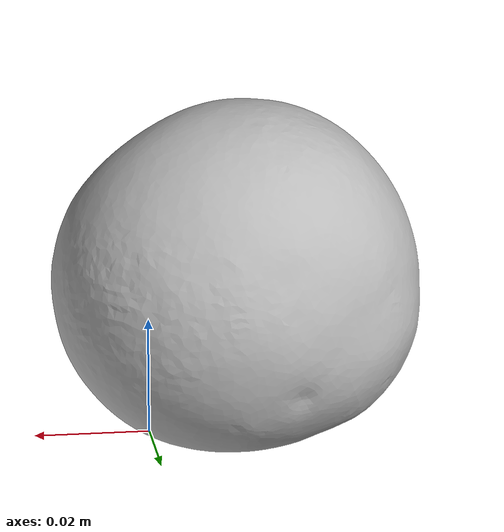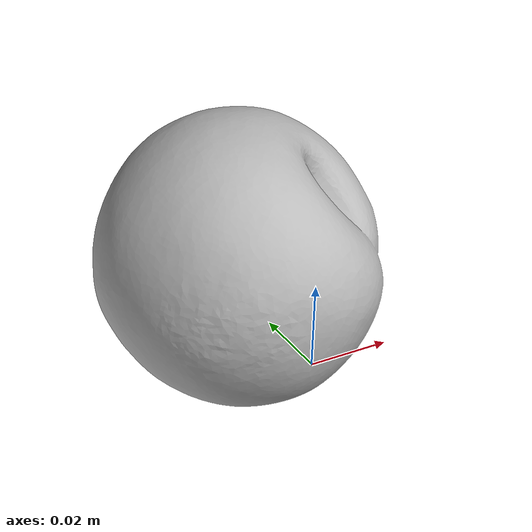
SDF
<?xml version='1.0'?>
<sdf version="1.4">
  <model name="peach">
    <static>false</static>
    <link name="link">
      <inertial>
        <pose>-0.015047325763457799 0.006783997168206115 0.028259603076768534 -1.5066518783726335 -0.8069487758811774 -0.6699450846973227</pose>
        <mass>0.00011721380481271601</mass>
        <inertia>
          <ixx>4.5876541133455994e-08</ixx>
          <ixy>5.698598500629543e-24</ixy>
          <ixz>8.445376820166222e-24</ixz>
          <iyy>4.444044618666359e-08</iyy>
          <iyz>8.731817842978328e-24</iyz>
          <izz>4.0982746223781005e-08</izz>
        </inertia>
      </inertial>
      <collision name="collision">
        <geometry>
          <mesh>
            <!-- Use a downsampled mesh for collisions -->
            <uri>model://015_peach/google_16k/015_peach.obj</uri>
            </mesh>
        </geometry>
        <surface>
          <friction>
            <ode>
              <mu>0.9</mu>
              <mu2>0.9</mu2>
            </ode>
          </friction>
          <contact>
            <ode>
              <kp>1000000000000.0</kp>
              <kd>1</kd>
              <min_depth>0.0001</min_depth>
              <max_vel>0.01</max_vel>
            </ode>
          </contact>
          <bounce>
            <restitution_coefficient>0.1</restitution_coefficient>
            <threshold>1000.0</threshold>
          </bounce>
        </surface>
      </collision>
      <visual name="visual">
        <geometry>
          <mesh>
            <uri>model://015_peach/google_16k/015_peach.dae</uri>
            </mesh>
        </geometry>
      </visual>
    </link>
  </model>
</sdf>
